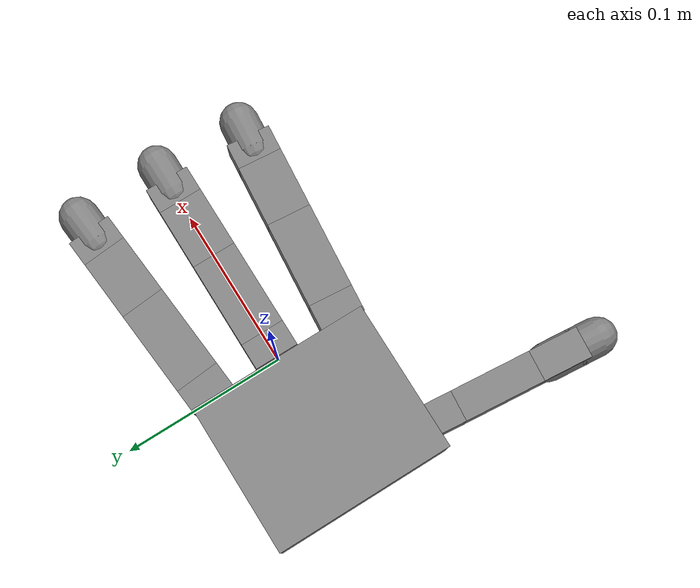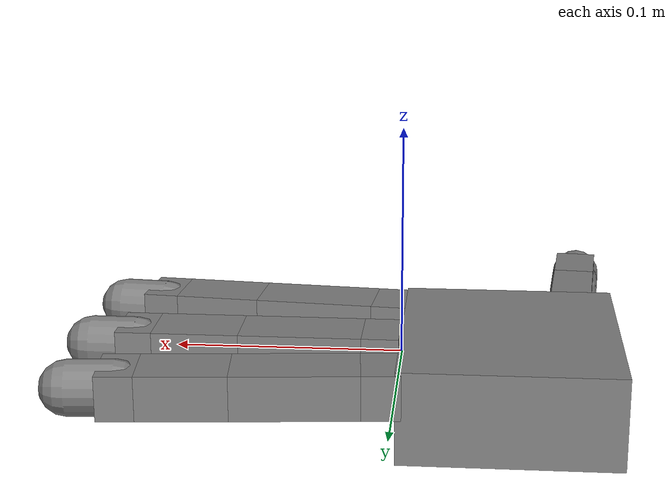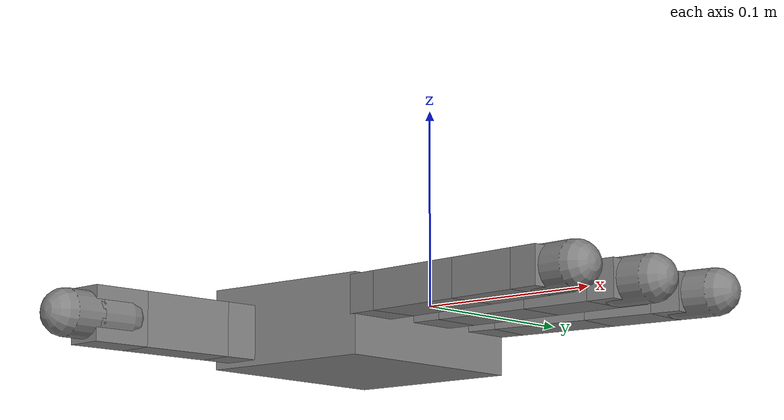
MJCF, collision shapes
<mujoco model="allegro_right">
  <compiler angle="radian" meshdir="assets" autolimits="true"/>

  <default>
    <default class="allegro_right">
      <joint axis="0 1 0" damping=".1"/>
      <position kp="1"/>
      <geom density="800"/>

      <default class="visual">
        <geom type="mesh" contype="0" conaffinity="0" group="2" material="black" mass="0"/>
        <default class="palm_visual">
          <geom mesh="base_link"/>
        </default>
        <default class="base_visual">
          <geom mesh="link_0.0"/>
        </default>
        <default class="proximal_visual">
          <geom mesh="link_1.0"/>
        </default>
        <default class="medial_visual">
          <geom mesh="link_2.0"/>
        </default>
        <default class="distal_visual">
          <geom mesh="link_3.0"/>
        </default>
        <default class="fingertip_visual">
          <geom pos="0 0 0.0267" material="white" mesh="link_3.0_tip"/>
        </default>
        <default class="thumbtip_visual">
          <geom pos="0 0 0.0423" material="white" mesh="link_15.0_tip"/>
        </default>
      </default>

      <default class="collision">
        <geom group="3" type="box"/>
        <default class="palm_collision">
          <geom size="0.0204 0.0565 0.0475" pos="-0.0093 0 -0.0475"/>
        </default>
        <default class="base_collision">
          <geom size="0.0098 0.01375 0.0082" pos="0 0 0.0082"/>
          <default class="thumb_base_collision">
            <geom size="0.0179 0.017 0.02275" pos="-0.0179 0.009 0.0145"/>
          </default>
        </default>
        <default class="proximal_collision">
          <geom size="0.0098 0.01375 0.027" pos="0 0 0.027"/>
          <default class="thumb_proximal_collision">
            <geom size="0.0098 0.01375 0.00885" pos="0 0 0.00885"/>
          </default>
        </default>
        <default class="medial_collision">
          <geom size="0.0098 0.01375 0.0192" pos="0 0 0.0192"/>
          <default class="thumb_medial_collision">
            <geom size="0.0098 0.01375 0.0257" pos="0 0 0.0257"/>
          </default>
        </default>
        <default class="distal_collision">
          <geom size="0.0098 0.01375 0.008" pos="0 0 0.008"/>
          <default class="thumb_distal_collision">
            <geom size="0.0098 0.01375 0.0157" pos="0 0 0.0157"/>
          </default>
        </default>
        <default class="fingertip_collision">
          <geom type="capsule" size="0.012 0.01" pos="0 0 0.019"/>
          <default class="thumbtip_collision">
            <geom type="capsule" size="0.012 0.008" pos="0 0 0.035"/>
          </default>
        </default>
      </default>

      <default class="base">
        <joint axis="0 0 1" range="-0.47 0.47"/>
        <position ctrlrange="-0.47 0.47"/>
      </default>
      <default class="proximal">
        <joint range="-0.196 1.61"/>
        <position ctrlrange="-0.196 1.61"/>
      </default>
      <default class="medial">
        <joint range="-0.174 1.709"/>
        <position ctrlrange="-0.174 1.709"/>
      </default>
      <default class="distal">
        <joint range="-0.227 1.618"/>
        <position ctrlrange="-0.227 1.618"/>
      </default>
      <default class="thumb_base">
        <joint axis="-1 0 0" range="0.263 1.396"/>
        <position ctrlrange="0.263 1.396"/>
      </default>
      <default class="thumb_proximal">
        <joint axis="0 0 1" range="-0.105 1.163"/>
        <position ctrlrange="-0.105 1.163"/>
      </default>
      <default class="thumb_medial">
        <joint range="-0.189 1.644"/>
        <position ctrlrange="-0.189 1.644"/>
      </default>
      <default class="thumb_distal">
        <joint range="-0.162 1.719"/>
        <position ctrlrange="-0.162 1.719"/>
      </default>
    </default>

    <default class="tactile_sensor">
      <site group="4" rgba="1 0 0 1"/>
    </default>
  </default>

  <asset>
    <material name="black" rgba="0.2 0.2 0.2 1"/>
    <material name="white" rgba="0.9 0.9 0.9 1"/>

    <mesh file="base_link.stl"/>
    <mesh file="link_0.0.stl"/>
    <mesh file="link_1.0.stl"/>
    <mesh file="link_2.0.stl"/>
    <mesh file="link_3.0.stl"/>
    <mesh file="link_3.0_tip.stl"/>
    <mesh file="link_12.0_right.stl"/>
    <mesh file="link_13.0.stl"/>
    <mesh file="link_14.0.stl"/>
    <mesh file="link_15.0.stl"/>
    <mesh file="link_15.0_tip.stl"/>
  </asset>

  <worldbody>
    <body name="palm" quat="0 1 0 1" childclass="allegro_right">
      <geom class="palm_visual" mesh="base_link"/>
      <geom class="palm_collision"/>
      <!-- First finger -->
      <body name="ff_base" pos="0 0.0435 -0.001542" quat="0.999048 -0.0436194 0 0">
        <joint name="ffj0" class="base"/>
        <geom class="base_visual"/>
        <geom class="base_collision"/>
        <body name="ff_proximal" pos="0 0 0.0164">
          <joint name="ffj1" class="proximal"/>
          <geom class="proximal_visual"/>
          <geom class="proximal_collision"/>
          <body name="ff_medial" pos="0 0 0.054">
            <joint name="ffj2" class="medial"/>
            <geom class="medial_visual"/>
            <geom class="medial_collision"/>
            <body name="ff_distal" pos="0 0 0.0384">
              <joint name="ffj3" class="distal"/>
              <geom class="distal_visual"/>
              <geom class="distal_collision"/>
              <body name="ff_tip">
                <geom class="fingertip_visual"/>
                <geom name="ff_tip" class="fingertip_collision"/>
                <body name="ff_force_sensor">
                  <inertial pos="0 0 0" mass="0.0001" diaginertia="0 0 0"/>
                  <geom class="fingertip_collision"/>
                  <site name="ff_force_sensor" class="tactile_sensor"/>
                </body>
              </body>
            </body>
          </body>
        </body>
      </body>
      <!-- Middle finger -->
      <body name="mf_base" pos="0 0 0.0007">
        <joint name="mfj0" class="base"/>
        <geom class="base_visual"/>
        <geom class="base_collision"/>
        <body name="mf_proximal" pos="0 0 0.0164">
          <joint name="mfj1" class="proximal"/>
          <geom class="proximal_visual"/>
          <geom class="proximal_collision"/>
          <body name="mf_medial" pos="0 0 0.054">
            <joint name="mfj2" class="medial"/>
            <geom class="medial_visual"/>
            <geom class="medial_collision"/>
            <body name="mf_distal" pos="0 0 0.0384">
              <joint name="mfj3" class="distal"/>
              <geom class="distal_visual"/>
              <geom class="distal_collision"/>
              <body name="mf_tip">
                <geom class="fingertip_visual"/>
                <geom name="mf_tip" class="fingertip_collision"/>
                <body name="mf_force_sensor">
                  <inertial pos="0 0 0" mass="0.0001" diaginertia="0 0 0"/>
                  <geom class="fingertip_collision"/>
                  <site name="mf_force_sensor" class="tactile_sensor"/>
                </body>
              </body>
            </body>
          </body>
        </body>
      </body>
      <!-- Ring finger -->
      <body name="rf_base" pos="0 -0.0435 -0.001542" quat="0.999048 0.0436194 0 0">
        <joint name="rfj0" class="base"/>
        <geom class="base_visual"/>
        <geom class="base_collision"/>
        <body name="rf_proximal" pos="0 0 0.0164">
          <joint name="rfj1" class="proximal"/>
          <geom class="proximal_visual"/>
          <geom class="proximal_collision"/>
          <body name="rf_medial" pos="0 0 0.054">
            <joint name="rfj2" class="medial"/>
            <geom class="medial_visual"/>
            <geom class="medial_collision"/>
            <body name="rf_distal" pos="0 0 0.0384">
              <joint name="rfj3" class="distal"/>
              <geom class="distal_visual"/>
              <geom class="distal_collision"/>
              <body name="rf_tip">
                <geom class="fingertip_visual"/>
                <geom name="rf_tip" class="fingertip_collision"/>
                <body name="rf_force_sensor">
                  <inertial pos="0 0 0" mass="0.0001" diaginertia="0 0 0"/>
                  <geom class="fingertip_collision"/>
                  <site name="rf_force_sensor" class="tactile_sensor"/>
                </body>
              </body>
            </body>
          </body>
        </body>
      </body>
      <!-- Thumb -->
      <body name="th_base" pos="-0.0182 0.019333 -0.045987" quat="0.477714 -0.521334 -0.521334 -0.477714">
        <joint name="thj0" class="thumb_base"/>
        <geom class="visual" mesh="link_12.0_right"/>
        <geom class="thumb_base_collision"/>
        <body name="th_proximal" pos="-0.027 0.005 0.0399">
          <joint name="thj1" class="thumb_proximal"/>
          <geom class="visual" mesh="link_13.0"/>
          <geom class="thumb_proximal_collision"/>
          <body name="th_medial" pos="0 0 0.0177">
            <joint name="thj2" class="thumb_medial"/>
            <geom class="visual" mesh="link_14.0"/>
            <geom class="thumb_medial_collision"/>
            <body name="th_distal" pos="0 0 0.0514">
              <joint name="thj3" class="thumb_distal"/>
              <geom class="visual" mesh="link_15.0"/>
              <geom class="thumb_distal_collision"/>
              <body name="th_tip">
                <geom class="thumbtip_visual"/>
                <geom name="th_tip" class="thumbtip_collision"/>
                <body name="th_force_sensor">
                  <inertial pos="0 0 0" mass="0.0001" diaginertia="0 0 0"/>
                  <geom class="fingertip_collision"/>
                  <site name="th_force_sensor" class="tactile_sensor"/>
                </body>
              </body>
            </body>
          </body>
        </body>
      </body>
    </body>
  </worldbody>

  <contact>
    <exclude body1="palm" body2="ff_base"/>
    <exclude body1="palm" body2="mf_base"/>
    <exclude body1="palm" body2="rf_base"/>
    <exclude body1="palm" body2="th_base"/>
    <exclude body1="palm" body2="th_proximal"/>
  </contact>

  <actuator>
    <general gainprm="7.54 0 0 0 0 0 0 0 0 0" biasprm="0 -7.54 0 0 0 0 0 0 0 0" biastype="affine" ctrllimited="true" ctrlrange="-0.47 0.47" joint="ffj0" name="ffa0" forcerange="-0.7 0.7" forcelimited="true"/>
    <general gainprm="2.11 0 0 0 0 0 0 0 0 0" biasprm="0 -2.11 0 0 0 0 0 0 0 0" biastype="affine" ctrllimited="true" ctrlrange="-0.196 1.61" joint="ffj1" name="ffa1" forcerange="-0.7 0.7" forcelimited="true"/>
    <general gainprm="9.45 0 0 0 0 0 0 0 0 0" biasprm="0 -9.45 0 0 0 0 0 0 0 0" biastype="affine" ctrllimited="true" ctrlrange="-0.174 1.709" joint="ffj2" name="ffa2" forcerange="-0.7 0.7" forcelimited="true"/>
    <general gainprm="4.26 0 0 0 0 0 0 0 0 0" biasprm="0 -4.26 0 0 0 0 0 0 0 0" biastype="affine" ctrllimited="true" ctrlrange="-0.227 1.618" joint="ffj3" name="ffa3" forcerange="-0.7 0.7" forcelimited="true"/>
    <general gainprm="7.82 0 0 0 0 0 0 0 0 0" biasprm="0 -7.82 0 0 0 0 0 0 0 0" biastype="affine" ctrllimited="true" ctrlrange="-0.47 0.47" joint="mfj0" name="mfa0" forcerange="-0.7 0.7" forcelimited="true"/>
    <general gainprm="0.56 0 0 0 0 0 0 0 0 0" biasprm="0 -0.56 0 0 0 0 0 0 0 0" biastype="affine" ctrllimited="true" ctrlrange="-0.196 1.61" joint="mfj1" name="mfa1" forcerange="-0.7 0.7" forcelimited="true"/>
    <general gainprm="8.35 0 0 0 0 0 0 0 0 0" biasprm="0 -8.35 0 0 0 0 0 0 0 0" biastype="affine" ctrllimited="true" ctrlrange="-0.174 1.709" joint="mfj2" name="mfa2" forcerange="-0.7 0.7" forcelimited="true"/>
    <general gainprm="1.92 0 0 0 0 0 0 0 0 0" biasprm="0 -1.92 0 0 0 0 0 0 0 0" biastype="affine" ctrllimited="true" ctrlrange="-0.227 1.618" joint="mfj3" name="mfa3" forcerange="-0.7 0.7" forcelimited="true"/>
    <general gainprm="3.95 0 0 0 0 0 0 0 0 0" biasprm="0 -3.95 0 0 0 0 0 0 0 0" biastype="affine" ctrllimited="true" ctrlrange="-0.47 0.47" joint="rfj0" name="rfa0" forcerange="-0.7 0.7" forcelimited="true"/>
    <general gainprm="3.00 0 0 0 0 0 0 0 0 0" biasprm="0 -3.00 0 0 0 0 0 0 0 0" biastype="affine" ctrllimited="true" ctrlrange="-0.196 1.61" joint="rfj1" name="rfa1" forcerange="-0.7 0.7" forcelimited="true"/>
    <general gainprm="6.01 0 0 0 0 0 0 0 0 0" biasprm="0 -6.01 0 0 0 0 0 0 0 0" biastype="affine" ctrllimited="true" ctrlrange="-0.174 1.709" joint="rfj2" name="rfa2" forcerange="-0.7 0.7" forcelimited="true"/>
    <general gainprm="7.49 0 0 0 0 0 0 0 0 0" biasprm="0 -7.49 0 0 0 0 0 0 0 0" biastype="affine" ctrllimited="true" ctrlrange="-0.227 1.618" joint="rfj3" name="rfa3" forcerange="-0.7 0.7" forcelimited="true"/>
    <general gainprm="6.38 0 0 0 0 0 0 0 0 0" biasprm="0 -6.38 0 0 0 0 0 0 0 0" biastype="affine" ctrllimited="true" ctrlrange="0.263 1.396" joint="thj0" name="tha0" forcerange="-0.7 0.7" forcelimited="true"/>
    <general gainprm="5.97 0 0 0 0 0 0 0 0 0" biasprm="0 -5.97 0 0 0 0 0 0 0 0" biastype="affine" ctrllimited="true" ctrlrange="-0.105 1.163" joint="thj1" name="tha1" forcerange="-0.7 0.7" forcelimited="true"/>
    <general gainprm="2.95 0 0 0 0 0 0 0 0 0" biasprm="0 -2.95 0 0 0 0 0 0 0 0" biastype="affine" ctrllimited="true" ctrlrange="-0.189 1.644" joint="thj2" name="tha2" forcerange="-0.7 0.7" forcelimited="true"/>
    <general gainprm="7.32 0 0 0 0 0 0 0 0 0" biasprm="0 -7.32 0 0 0 0 0 0 0 0" biastype="affine" ctrllimited="true" ctrlrange="-0.162 1.719" joint="thj3" name="tha3" forcerange="-0.7 0.7" forcelimited="true"/>
  </actuator>

  <sensor>
    <force name="ff_tip_force" site="ff_force_sensor"/>
    <force name="mf_tip_force" site="mf_force_sensor"/>
    <force name="rf_tip_force" site="rf_force_sensor"/>
    <force name="th_tip_force" site="th_force_sensor"/>
  </sensor>
</mujoco>
